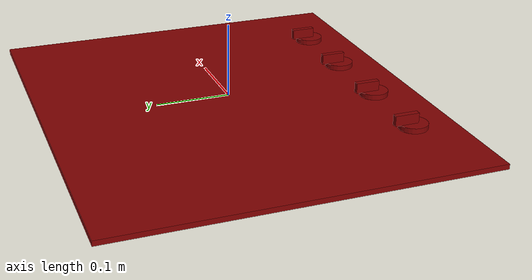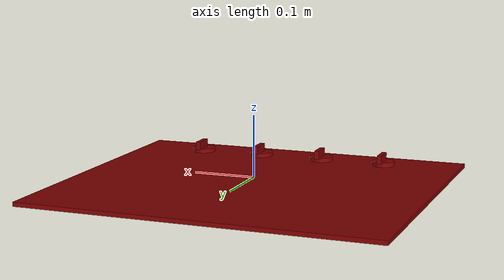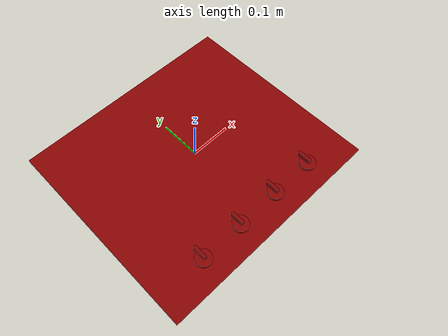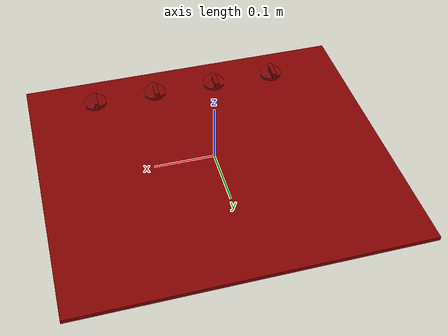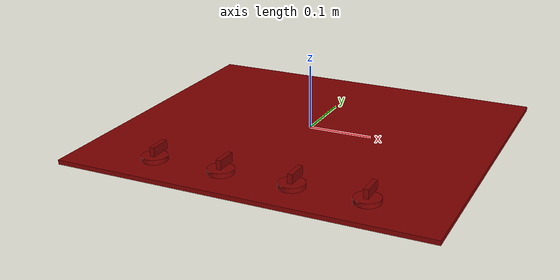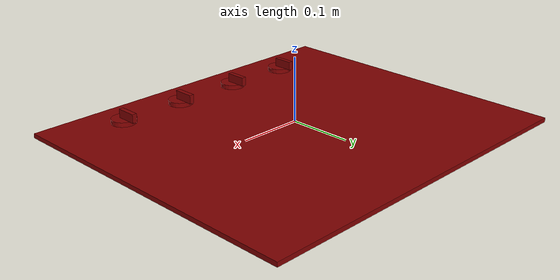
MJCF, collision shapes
<?xml version='1.0' encoding='UTF-8'?>
<mujoco model="model">
  <compiler angle="radian"/>
  <asset>
    <mesh file="visuals/knob_front_left.obj" name="knob_front_left_vis"/>
    <mesh file="visuals/knob_front_right.obj" name="knob_front_right_vis"/>
    <mesh file="visuals/knob_rear_left.obj" name="knob_rear_left_vis"/>
    <mesh file="visuals/knob_rear_right.obj" name="knob_rear_right_vis"/>
    <mesh file="visuals/Body001.obj" name="Body001_vis"/>
    <texture file="visuals/T_BC001.png" name="Body001_material" type="2d"/>
    <material name="Body001_material" rgba="1 1 1 1.0" texture="Body001_material" shininess="0.4472135901451111" specular="2"/>
    <texture file="visuals/T_BC001.png" name="knob_front_left_material" type="2d"/>
    <material name="knob_front_left_material" rgba="1 1 1 1.0" texture="knob_front_left_material" shininess="0.4472135901451111" specular="1"/>
    <texture file="visuals/T_BC001.png" name="knob_front_right_material" type="2d"/>
    <material name="knob_front_right_material" rgba="1 1 1 1.0" texture="knob_front_right_material" shininess="0.4472135901451111" specular="1"/>
    <texture file="visuals/T_BC001.png" name="knob_rear_left_material" type="2d"/>
    <material name="knob_rear_left_material" rgba="1 1 1 1.0" texture="knob_rear_left_material" shininess="0.4472135901451111" specular="1"/>
    <texture file="visuals/T_BC001.png" name="knob_rear_right_material" type="2d"/>
    <material name="knob_rear_right_material" rgba="1 1 1 1.0" texture="knob_rear_right_material" shininess="0.4472135901451111" specular="1"/>
  </asset>
  <default>
    <default class="visual">
      <geom conaffinity="0" contype="0" group="1" type="mesh"/>
    </default>
    <default class="collision">
      <geom group="0" rgba="0.5 0 0 0.5"/>
    </default>
    <default class="spawn">
      <geom group="0" rgba="1 1 1 0.5" contype="0" conaffinity="0"/>
      <site group="0" rgba="1 1 1 0.5"/>
    </default>
    <default class="region">
      <geom group="1" conaffinity="0" contype="0" rgba="0 1 0 0"/>
    </default>
  </default>
  <worldbody>
    <body>
      <body name="object">
        <site type="cylinder" rgba="0.5 0 0 0.5" size="0.066531240940094 4.999999509891495e-05" pos="0.15531879663467407 -0.0474163256585598 -0.007247693836688995" name="burner_on_front_right"/>
        <site type="cylinder" rgba="0.5 0 0 0.5" size="0.08241494745016098 4.999999873689376e-05" pos="-0.13493065536022186 -0.031789783388376236 -0.00724769476801157" name="burner_on_front_left"/>
        <site type="cylinder" rgba="0.5 0 0 0.5" size="0.06653124839067459 4.999999873689376e-05" pos="-0.13465985655784607 0.14202648401260376 -0.00724769476801157" name="burner_on_rear_left"/>
        <site type="cylinder" rgba="0.5 0 0 0.5" size="0.09575821459293365 4.999999509891495e-05" pos="0.06955046951770782 0.11628402769565582 -0.00724769476801157" name="burner_on_rear_right"/>
        <geom mesh="Body001_vis" type="mesh" solimp="0.998 0.998 0.001" solref="0.001 1" density="100" friction="0.95 0.3 0.1" class="visual" material="Body001_material"/>
        <geom class="collision" type="box" pos="1.713446273754471e-08 3.3162180557155807e-07 -0.010577866807579994" size="0.287504643201828 0.25250571966171265 0.003463558154180646" quat="1.0 0.0 0.0 0.0"/>
        <body name="knob_front_left">
          <joint axis="0.0 0.0 1.0" pos="-0.16024501621723175 -0.1932367980480194 -0.00043057650327682495" limited="true" name="knob_front_left_joint" range="0.0 3.141592653589793" type="hinge" damping="0.05" armature="0.001"/>
          <geom mesh="knob_front_left_vis" type="mesh" solimp="0.998 0.998 0.001" solref="0.001 1" density="100" friction="0.95 0.3 0.1" class="visual" material="knob_front_left_material"/>
          <geom class="collision" type="cylinder" pos="-0.16010397672653198 -0.19313779473304749 -0.0034862475004047155" size="0.01970604807138443 0.003617193317040801" quat="1.0 0.0 0.0 0.0"/>
          <geom class="collision" type="box" pos="-0.1603866070508957 -0.1821918785572052 0.006927906535565853" size="0.0037172825541347265 0.016593603417277336 0.007052939850836992" quat="1.0 0.0 0.0 0.0"/>
        </body>
        <body name="knob_front_right">
          <joint axis="0.0 0.0 1.0" pos="0.17018404603004456 -0.1932367980480194 -0.00043057650327682495" limited="true" name="knob_front_right_joint" range="0.0 3.141592653589793" type="hinge" damping="0.05" armature="0.001"/>
          <geom mesh="knob_front_right_vis" type="mesh" solimp="0.998 0.998 0.001" solref="0.001 1" density="100" friction="0.95 0.3 0.1" class="visual" material="knob_front_right_material"/>
          <geom class="collision" type="cylinder" pos="0.17007064819335938 -0.19313779473304749 -0.0034862475004047155" size="0.019706055521965027 0.0036171970423310995" quat="1.0 0.0 0.0 0.0"/>
          <geom class="collision" type="box" pos="0.16978801786899567 -0.1821918785572052 0.006927906535565853" size="0.0037172858137637377 0.016593603417277336 0.007052939850836992" quat="1.0 0.0 0.0 0.0"/>
        </body>
        <body name="knob_rear_left">
          <joint axis="0.0 0.0 1.0" pos="-0.04999475181102753 -0.1932367980480194 -0.00043057650327682495" limited="true" name="knob_rear_left_joint" range="0.0 3.141592653589793" type="hinge" damping="0.05" armature="0.001"/>
          <geom mesh="knob_rear_left_vis" type="mesh" solimp="0.998 0.998 0.001" solref="0.001 1" density="100" friction="0.95 0.3 0.1" class="visual" material="knob_rear_left_material"/>
          <geom class="collision" type="cylinder" pos="-0.0499558299779892 -0.19313779473304749 -0.0034862475004047155" size="0.01970604993402958 0.0036171944811940193" quat="1.0 0.0 0.0 0.0"/>
          <geom class="collision" type="box" pos="-0.050238460302352905 -0.1821918785572052 0.006927906535565853" size="0.003717283718287945 0.016593603417277336 0.007052939850836992" quat="1.0 0.0 0.0 0.0"/>
        </body>
        <body name="knob_rear_right">
          <joint axis="0.0 0.0 1.0" pos="0.059856534004211426 -0.1932367980480194 -0.00043057650327682495" limited="true" name="knob_rear_right_joint" range="0.0 3.141592653589793" type="hinge" damping="0.05" armature="0.001"/>
          <geom mesh="knob_rear_right_vis" type="mesh" solimp="0.998 0.998 0.001" solref="0.001 1" density="100" friction="0.95 0.3 0.1" class="visual" material="knob_rear_right_material"/>
          <geom class="collision" type="cylinder" pos="0.06070679426193237 -0.19313779473304749 -0.0034862475004047155" size="0.01970605179667473 0.0036171958781778812" quat="1.0 0.0 0.0 0.0"/>
          <geom class="collision" type="box" pos="0.060424163937568665 -0.1821918785572052 0.006927906535565853" size="0.0037172846496105194 0.016593603417277336 0.007052939850836992" quat="1.0 0.0 0.0 0.0"/>
        </body>
        <geom class="region" name="reg_main" type="box" pos="0.0 2.955424793782413e-11 -0.010577879846096039" size="0.2875049114227295 0.25250571966171265 0.003463537199422717"/>
      </body>
    </body>
  </worldbody>
  <actuator>
    <motor name="knob_front_left_joint_actuator" joint="knob_front_left_joint" gear="10"/>
    <motor name="knob_front_right_joint_actuator" joint="knob_front_right_joint" gear="10"/>
    <motor name="knob_rear_left_joint_actuator" joint="knob_rear_left_joint" gear="10"/>
    <motor name="knob_rear_right_joint_actuator" joint="knob_rear_right_joint" gear="10"/>
  </actuator>
</mujoco>
